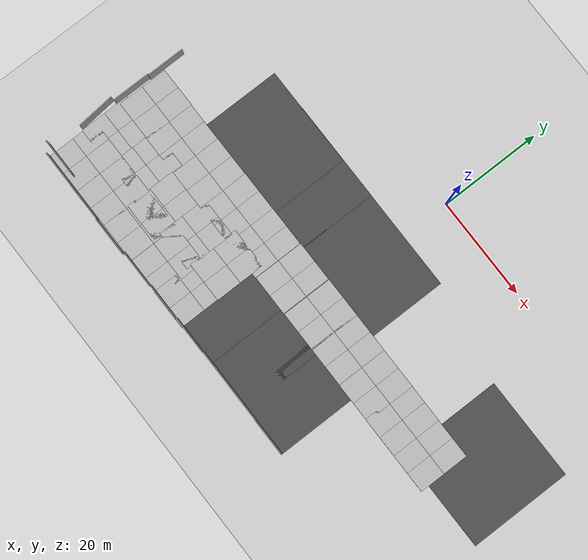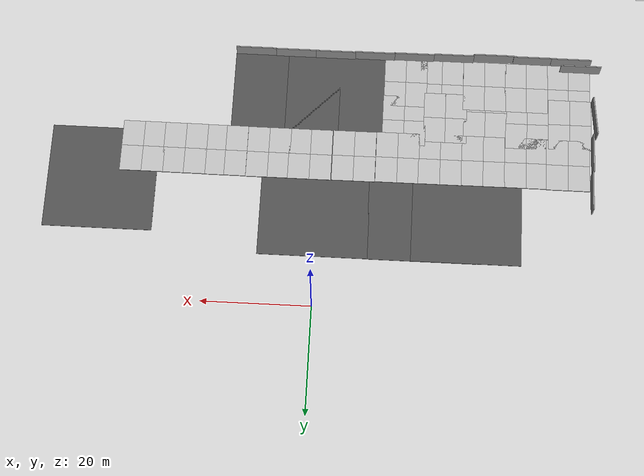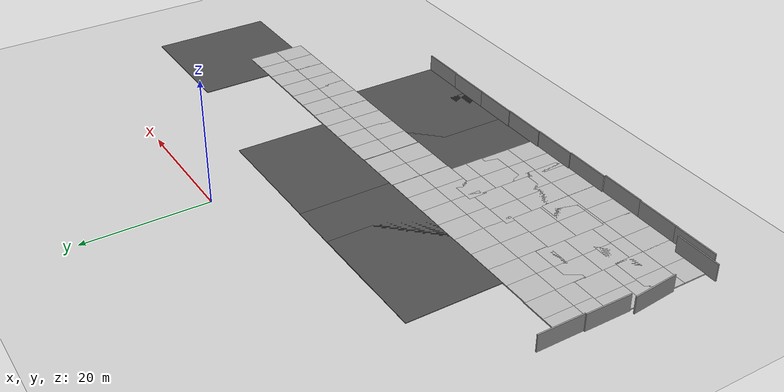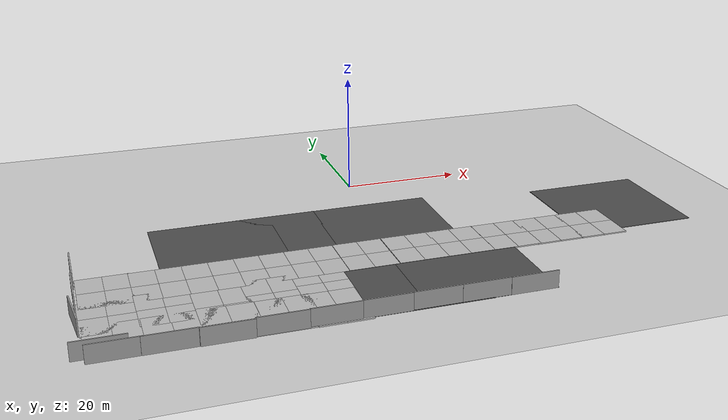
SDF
<sdf version="1.6">
 <world name="default">
  <model name="ground_plane">
   <static>1</static>
   <link name="link">
    <collision name="collision">
     <geometry><plane><normal>0 0 1</normal><size>100 100</size></plane></geometry>
     <surface><friction><ode><mu>100</mu><mu2>50</mu2></ode></friction></surface>
    </collision>
    <visual name="visual">
     <cast_shadows>0</cast_shadows>
     <geometry><plane><normal>0 0 1</normal><size>100 100</size></plane></geometry>
     <material>
      <script><uri>file://media/materials/scripts/gazebo.material</uri><name>Gazebo/Grey</name></script>
     </material>
    </visual>
   </link>
  </model>
  <model name="asphalt_plane">
   <static>1</static>
   <link name="link">
    <collision name="collision"><geometry><box><size>20 20 0.1</size></box></geometry></collision>
    <visual name="visual">
     <cast_shadows>0</cast_shadows>
     <geometry><box><size>20 20 0.1</size></box></geometry>
     <material>
      <script>
       <uri>model://asphalt_plane/materials/scripts</uri>
       <uri>model://asphalt_plane/materials/textures</uri>
       <name>vrc/asphalt</name>
      </script>
     </material>
    </visual>
   </link>
   <pose>0.46329 -19.4958 0 0 -0 0</pose>
  </model>
  <model name="asphalt_plane_0">
   <static>1</static>
   <link name="link">
    <collision name="collision"><geometry><box><size>20 20 0.1</size></box></geometry></collision>
    <visual name="visual">
     <cast_shadows>0</cast_shadows>
     <geometry><box><size>20 20 0.1</size></box></geometry>
     <material>
      <script>
       <uri>model://asphalt_plane/materials/scripts</uri>
       <uri>model://asphalt_plane/materials/textures</uri>
       <name>vrc/asphalt</name>
      </script>
     </material>
    </visual>
   </link>
   <pose>-19.3509 -19.4595 0 0 -0 0</pose>
  </model>
  <model name="asphalt_plane_2">
   <static>1</static>
   <link name="link">
    <collision name="collision"><geometry><box><size>20 20 0.1</size></box></geometry></collision>
    <visual name="visual">
     <cast_shadows>0</cast_shadows>
     <geometry><box><size>20 20 0.1</size></box></geometry>
     <material>
      <script>
       <uri>model://asphalt_plane/materials/scripts</uri>
       <uri>model://asphalt_plane/materials/textures</uri>
       <name>vrc/asphalt</name>
      </script>
     </material>
    </visual>
   </link>
   <pose>-27.35 -19.5085 0 0 -0 0</pose>
  </model>
  <model name="mud_box_2_clone">
   <static>1</static>
   <link name="link">
    <collision name="collision"><geometry><box><size>8 10 0.2</size></box></geometry></collision>
    <visual name="visual_1">
     <pose>-2 2.5 0 0 -0 0</pose>
     <cast_shadows>0</cast_shadows>
     <geometry><box><size>4 5 0.2</size></box></geometry>
     <material>
      <script>
       <uri>model://mud_box/materials/scripts</uri>
       <uri>model://mud_box/materials/textures</uri>
       <name>vrc/mud</name>
      </script>
     </material>
    </visual>
    <visual name="visual_2">
     <pose>2 2.5 0 0 -0 0</pose>
     <cast_shadows>0</cast_shadows>
     <geometry><box><size>4 5 0.2</size></box></geometry>
     <material>
      <script>
       <uri>model://mud_box/materials/scripts</uri>
       <uri>model://mud_box/materials/textures</uri>
       <name>vrc/mud</name>
      </script>
     </material>
    </visual>
    <visual name="visual_3">
     <pose>2 -2.5 0 0 -0 0</pose>
     <cast_shadows>0</cast_shadows>
     <geometry><box><size>4 5 0.2</size></box></geometry>
     <material>
      <script>
       <uri>model://mud_box/materials/scripts</uri>
       <uri>model://mud_box/materials/textures</uri>
       <name>vrc/mud</name>
      </script>
     </material>
    </visual>
    <visual name="visual_4">
     <pose>-2 -2.5 0 0 -0 0</pose>
     <cast_shadows>0</cast_shadows>
     <geometry><box><size>4 5 0.2</size></box></geometry>
     <material>
      <script>
       <uri>model://mud_box/materials/scripts</uri>
       <uri>model://mud_box/materials/textures</uri>
       <name>vrc/mud</name>
      </script>
     </material>
    </visual>
   </link>
   <pose>-6.29821 -29.5881 0 0 -0 0</pose>
  </model>
  <model name="mud_box_2_clone_0">
   <static>1</static>
   <link name="link">
    <collision name="collision"><geometry><box><size>8 10 0.2</size></box></geometry></collision>
    <visual name="visual_1">
     <pose>-2 2.5 0 0 -0 0</pose>
     <cast_shadows>0</cast_shadows>
     <geometry><box><size>4 5 0.2</size></box></geometry>
     <material>
      <script>
       <uri>model://mud_box/materials/scripts</uri>
       <uri>model://mud_box/materials/textures</uri>
       <name>vrc/mud</name>
      </script>
     </material>
    </visual>
    <visual name="visual_2">
     <pose>2 2.5 0 0 -0 0</pose>
     <cast_shadows>0</cast_shadows>
     <geometry><box><size>4 5 0.2</size></box></geometry>
     <material>
      <script>
       <uri>model://mud_box/materials/scripts</uri>
       <uri>model://mud_box/materials/textures</uri>
       <name>vrc/mud</name>
      </script>
     </material>
    </visual>
    <visual name="visual_3">
     <pose>2 -2.5 0 0 -0 0</pose>
     <cast_shadows>0</cast_shadows>
     <geometry><box><size>4 5 0.2</size></box></geometry>
     <material>
      <script>
       <uri>model://mud_box/materials/scripts</uri>
       <uri>model://mud_box/materials/textures</uri>
       <name>vrc/mud</name>
      </script>
     </material>
    </visual>
    <visual name="visual_4">
     <pose>-2 -2.5 0 0 -0 0</pose>
     <cast_shadows>0</cast_shadows>
     <geometry><box><size>4 5 0.2</size></box></geometry>
     <material>
      <script>
       <uri>model://mud_box/materials/scripts</uri>
       <uri>model://mud_box/materials/textures</uri>
       <name>vrc/mud</name>
      </script>
     </material>
    </visual>
   </link>
   <pose>1.80119 -29.5516 0 0 -0 0</pose>
  </model>
  <model name="mud_box_2_clone_1">
   <static>1</static>
   <link name="link">
    <collision name="collision"><geometry><box><size>8 10 0.2</size></box></geometry></collision>
    <visual name="visual_1">
     <pose>-2 2.5 0 0 -0 0</pose>
     <cast_shadows>0</cast_shadows>
     <geometry><box><size>4 5 0.2</size></box></geometry>
     <material>
      <script>
       <uri>model://mud_box/materials/scripts</uri>
       <uri>model://mud_box/materials/textures</uri>
       <name>vrc/mud</name>
      </script>
     </material>
    </visual>
    <visual name="visual_2">
     <pose>2 2.5 0 0 -0 0</pose>
     <cast_shadows>0</cast_shadows>
     <geometry><box><size>4 5 0.2</size></box></geometry>
     <material>
      <script>
       <uri>model://mud_box/materials/scripts</uri>
       <uri>model://mud_box/materials/textures</uri>
       <name>vrc/mud</name>
      </script>
     </material>
    </visual>
    <visual name="visual_3">
     <pose>2 -2.5 0 0 -0 0</pose>
     <cast_shadows>0</cast_shadows>
     <geometry><box><size>4 5 0.2</size></box></geometry>
     <material>
      <script>
       <uri>model://mud_box/materials/scripts</uri>
       <uri>model://mud_box/materials/textures</uri>
       <name>vrc/mud</name>
      </script>
     </material>
    </visual>
    <visual name="visual_4">
     <pose>-2 -2.5 0 0 -0 0</pose>
     <cast_shadows>0</cast_shadows>
     <geometry><box><size>4 5 0.2</size></box></geometry>
     <material>
      <script>
       <uri>model://mud_box/materials/scripts</uri>
       <uri>model://mud_box/materials/textures</uri>
       <name>vrc/mud</name>
      </script>
     </material>
    </visual>
   </link>
   <pose>9.52834 -29.56 0 0 -0 0</pose>
  </model>
  <model name="mud_box_2_clone_2">
   <static>1</static>
   <link name="link">
    <collision name="collision"><geometry><box><size>8 10 0.2</size></box></geometry></collision>
    <visual name="visual_1">
     <pose>-2 2.5 0 0 -0 0</pose>
     <cast_shadows>0</cast_shadows>
     <geometry><box><size>4 5 0.2</size></box></geometry>
     <material>
      <script>
       <uri>model://mud_box/materials/scripts</uri>
       <uri>model://mud_box/materials/textures</uri>
       <name>vrc/mud</name>
      </script>
     </material>
    </visual>
    <visual name="visual_2">
     <pose>2 2.5 0 0 -0 0</pose>
     <cast_shadows>0</cast_shadows>
     <geometry><box><size>4 5 0.2</size></box></geometry>
     <material>
      <script>
       <uri>model://mud_box/materials/scripts</uri>
       <uri>model://mud_box/materials/textures</uri>
       <name>vrc/mud</name>
      </script>
     </material>
    </visual>
    <visual name="visual_3">
     <pose>2 -2.5 0 0 -0 0</pose>
     <cast_shadows>0</cast_shadows>
     <geometry><box><size>4 5 0.2</size></box></geometry>
     <material>
      <script>
       <uri>model://mud_box/materials/scripts</uri>
       <uri>model://mud_box/materials/textures</uri>
       <name>vrc/mud</name>
      </script>
     </material>
    </visual>
    <visual name="visual_4">
     <pose>-2 -2.5 0 0 -0 0</pose>
     <cast_shadows>0</cast_shadows>
     <geometry><box><size>4 5 0.2</size></box></geometry>
     <material>
      <script>
       <uri>model://mud_box/materials/scripts</uri>
       <uri>model://mud_box/materials/textures</uri>
       <name>vrc/mud</name>
      </script>
     </material>
    </visual>
   </link>
   <pose>17.5411 -29.599 0 0 -0 0</pose>
  </model>
  <model name="mud_box_2_clone_3">
   <static>1</static>
   <link name="link">
    <collision name="collision"><geometry><box><size>8 10 0.2</size></box></geometry></collision>
    <visual name="visual_1">
     <pose>-2 2.5 0 0 -0 0</pose>
     <cast_shadows>0</cast_shadows>
     <geometry><box><size>4 5 0.2</size></box></geometry>
     <material>
      <script>
       <uri>model://mud_box/materials/scripts</uri>
       <uri>model://mud_box/materials/textures</uri>
       <name>vrc/mud</name>
      </script>
     </material>
    </visual>
    <visual name="visual_2">
     <pose>2 2.5 0 0 -0 0</pose>
     <cast_shadows>0</cast_shadows>
     <geometry><box><size>4 5 0.2</size></box></geometry>
     <material>
      <script>
       <uri>model://mud_box/materials/scripts</uri>
       <uri>model://mud_box/materials/textures</uri>
       <name>vrc/mud</name>
      </script>
     </material>
    </visual>
    <visual name="visual_3">
     <pose>2 -2.5 0 0 -0 0</pose>
     <cast_shadows>0</cast_shadows>
     <geometry><box><size>4 5 0.2</size></box></geometry>
     <material>
      <script>
       <uri>model://mud_box/materials/scripts</uri>
       <uri>model://mud_box/materials/textures</uri>
       <name>vrc/mud</name>
      </script>
     </material>
    </visual>
    <visual name="visual_4">
     <pose>-2 -2.5 0 0 -0 0</pose>
     <cast_shadows>0</cast_shadows>
     <geometry><box><size>4 5 0.2</size></box></geometry>
     <material>
      <script>
       <uri>model://mud_box/materials/scripts</uri>
       <uri>model://mud_box/materials/textures</uri>
       <name>vrc/mud</name>
      </script>
     </material>
    </visual>
   </link>
   <pose>25.0381 -29.645 0 0 -0 0</pose>
  </model>
  <model name="mud_box_2_clone_4">
   <static>1</static>
   <link name="link">
    <collision name="collision"><geometry><box><size>8 10 0.2</size></box></geometry></collision>
    <visual name="visual_1">
     <pose>-2 2.5 0 0 -0 0</pose>
     <cast_shadows>0</cast_shadows>
     <geometry><box><size>4 5 0.2</size></box></geometry>
     <material>
      <script>
       <uri>model://mud_box/materials/scripts</uri>
       <uri>model://mud_box/materials/textures</uri>
       <name>vrc/mud</name>
      </script>
     </material>
    </visual>
    <visual name="visual_2">
     <pose>2 2.5 0 0 -0 0</pose>
     <cast_shadows>0</cast_shadows>
     <geometry><box><size>4 5 0.2</size></box></geometry>
     <material>
      <script>
       <uri>model://mud_box/materials/scripts</uri>
       <uri>model://mud_box/materials/textures</uri>
       <name>vrc/mud</name>
      </script>
     </material>
    </visual>
    <visual name="visual_3">
     <pose>2 -2.5 0 0 -0 0</pose>
     <cast_shadows>0</cast_shadows>
     <geometry><box><size>4 5 0.2</size></box></geometry>
     <material>
      <script>
       <uri>model://mud_box/materials/scripts</uri>
       <uri>model://mud_box/materials/textures</uri>
       <name>vrc/mud</name>
      </script>
     </material>
    </visual>
    <visual name="visual_4">
     <pose>-2 -2.5 0 0 -0 0</pose>
     <cast_shadows>0</cast_shadows>
     <geometry><box><size>4 5 0.2</size></box></geometry>
     <material>
      <script>
       <uri>model://mud_box/materials/scripts</uri>
       <uri>model://mud_box/materials/textures</uri>
       <name>vrc/mud</name>
      </script>
     </material>
    </visual>
   </link>
   <pose>-14.3475 -29.6616 0 0 -0 0</pose>
  </model>
  <model name="mud_box_2_clone_5">
   <static>1</static>
   <link name="link">
    <collision name="collision"><geometry><box><size>8 10 0.2</size></box></geometry></collision>
    <visual name="visual_1">
     <pose>-2 2.5 0 0 -0 0</pose>
     <cast_shadows>0</cast_shadows>
     <geometry><box><size>4 5 0.2</size></box></geometry>
     <material>
      <script>
       <uri>model://mud_box/materials/scripts</uri>
       <uri>model://mud_box/materials/textures</uri>
       <name>vrc/mud</name>
      </script>
     </material>
    </visual>
    <visual name="visual_2">
     <pose>2 2.5 0 0 -0 0</pose>
     <cast_shadows>0</cast_shadows>
     <geometry><box><size>4 5 0.2</size></box></geometry>
     <material>
      <script>
       <uri>model://mud_box/materials/scripts</uri>
       <uri>model://mud_box/materials/textures</uri>
       <name>vrc/mud</name>
      </script>
     </material>
    </visual>
    <visual name="visual_3">
     <pose>2 -2.5 0 0 -0 0</pose>
     <cast_shadows>0</cast_shadows>
     <geometry><box><size>4 5 0.2</size></box></geometry>
     <material>
      <script>
       <uri>model://mud_box/materials/scripts</uri>
       <uri>model://mud_box/materials/textures</uri>
       <name>vrc/mud</name>
      </script>
     </material>
    </visual>
    <visual name="visual_4">
     <pose>-2 -2.5 0 0 -0 0</pose>
     <cast_shadows>0</cast_shadows>
     <geometry><box><size>4 5 0.2</size></box></geometry>
     <material>
      <script>
       <uri>model://mud_box/materials/scripts</uri>
       <uri>model://mud_box/materials/textures</uri>
       <name>vrc/mud</name>
      </script>
     </material>
    </visual>
   </link>
   <pose>-22.2418 -29.6822 0 0 -0 0</pose>
  </model>
  <model name="mud_box_2_clone_6">
   <static>1</static>
   <link name="link">
    <collision name="collision"><geometry><box><size>8 10 0.2</size></box></geometry></collision>
    <visual name="visual_1">
     <pose>-2 2.5 0 0 -0 0</pose>
     <cast_shadows>0</cast_shadows>
     <geometry><box><size>4 5 0.2</size></box></geometry>
     <material>
      <script>
       <uri>model://mud_box/materials/scripts</uri>
       <uri>model://mud_box/materials/textures</uri>
       <name>vrc/mud</name>
      </script>
     </material>
    </visual>
    <visual name="visual_2">
     <pose>2 2.5 0 0 -0 0</pose>
     <cast_shadows>0</cast_shadows>
     <geometry><box><size>4 5 0.2</size></box></geometry>
     <material>
      <script>
       <uri>model://mud_box/materials/scripts</uri>
       <uri>model://mud_box/materials/textures</uri>
       <name>vrc/mud</name>
      </script>
     </material>
    </visual>
    <visual name="visual_3">
     <pose>2 -2.5 0 0 -0 0</pose>
     <cast_shadows>0</cast_shadows>
     <geometry><box><size>4 5 0.2</size></box></geometry>
     <material>
      <script>
       <uri>model://mud_box/materials/scripts</uri>
       <uri>model://mud_box/materials/textures</uri>
       <name>vrc/mud</name>
      </script>
     </material>
    </visual>
    <visual name="visual_4">
     <pose>-2 -2.5 0 0 -0 0</pose>
     <cast_shadows>0</cast_shadows>
     <geometry><box><size>4 5 0.2</size></box></geometry>
     <material>
      <script>
       <uri>model://mud_box/materials/scripts</uri>
       <uri>model://mud_box/materials/textures</uri>
       <name>vrc/mud</name>
      </script>
     </material>
    </visual>
   </link>
   <pose>-30.175 -29.7222 0 0 -0 0</pose>
  </model>
  <model name="mud_box_2_clone_7">
   <static>1</static>
   <link name="link">
    <collision name="collision"><geometry><box><size>8 10 0.2</size></box></geometry></collision>
    <visual name="visual_1">
     <pose>-2 2.5 0 0 -0 0</pose>
     <cast_shadows>0</cast_shadows>
     <geometry><box><size>4 5 0.2</size></box></geometry>
     <material>
      <script>
       <uri>model://mud_box/materials/scripts</uri>
       <uri>model://mud_box/materials/textures</uri>
       <name>vrc/mud</name>
      </script>
     </material>
    </visual>
    <visual name="visual_2">
     <pose>2 2.5 0 0 -0 0</pose>
     <cast_shadows>0</cast_shadows>
     <geometry><box><size>4 5 0.2</size></box></geometry>
     <material>
      <script>
       <uri>model://mud_box/materials/scripts</uri>
       <uri>model://mud_box/materials/textures</uri>
       <name>vrc/mud</name>
      </script>
     </material>
    </visual>
    <visual name="visual_3">
     <pose>2 -2.5 0 0 -0 0</pose>
     <cast_shadows>0</cast_shadows>
     <geometry><box><size>4 5 0.2</size></box></geometry>
     <material>
      <script>
       <uri>model://mud_box/materials/scripts</uri>
       <uri>model://mud_box/materials/textures</uri>
       <name>vrc/mud</name>
      </script>
     </material>
    </visual>
    <visual name="visual_4">
     <pose>-2 -2.5 0 0 -0 0</pose>
     <cast_shadows>0</cast_shadows>
     <geometry><box><size>4 5 0.2</size></box></geometry>
     <material>
      <script>
       <uri>model://mud_box/materials/scripts</uri>
       <uri>model://mud_box/materials/textures</uri>
       <name>vrc/mud</name>
      </script>
     </material>
    </visual>
   </link>
   <pose>-38.1218 -29.7385 0 0 -0 0</pose>
  </model>
  <model name="mud_box_2_clone_8">
   <static>1</static>
   <link name="link">
    <collision name="collision"><geometry><box><size>8 10 0.2</size></box></geometry></collision>
    <visual name="visual_1">
     <pose>-2 2.5 0 0 -0 0</pose>
     <cast_shadows>0</cast_shadows>
     <geometry><box><size>4 5 0.2</size></box></geometry>
     <material>
      <script>
       <uri>model://mud_box/materials/scripts</uri>
       <uri>model://mud_box/materials/textures</uri>
       <name>vrc/mud</name>
      </script>
     </material>
    </visual>
    <visual name="visual_2">
     <pose>2 2.5 0 0 -0 0</pose>
     <cast_shadows>0</cast_shadows>
     <geometry><box><size>4 5 0.2</size></box></geometry>
     <material>
      <script>
       <uri>model://mud_box/materials/scripts</uri>
       <uri>model://mud_box/materials/textures</uri>
       <name>vrc/mud</name>
      </script>
     </material>
    </visual>
    <visual name="visual_3">
     <pose>2 -2.5 0 0 -0 0</pose>
     <cast_shadows>0</cast_shadows>
     <geometry><box><size>4 5 0.2</size></box></geometry>
     <material>
      <script>
       <uri>model://mud_box/materials/scripts</uri>
       <uri>model://mud_box/materials/textures</uri>
       <name>vrc/mud</name>
      </script>
     </material>
    </visual>
    <visual name="visual_4">
     <pose>-2 -2.5 0 0 -0 0</pose>
     <cast_shadows>0</cast_shadows>
     <geometry><box><size>4 5 0.2</size></box></geometry>
     <material>
      <script>
       <uri>model://mud_box/materials/scripts</uri>
       <uri>model://mud_box/materials/textures</uri>
       <name>vrc/mud</name>
      </script>
     </material>
    </visual>
   </link>
   <pose>32.8401 -29.6668 0 0 -0 0</pose>
  </model>
  <model name="mud_box_5_clone_1_clone_4_clone">
   <static>1</static>
   <link name="link">
    <collision name="collision"><geometry><box><size>8 10 0.2</size></box></geometry></collision>
    <visual name="visual_1">
     <pose>-2 2.5 0 0 -0 0</pose>
     <cast_shadows>0</cast_shadows>
     <geometry><box><size>4 5 0.2</size></box></geometry>
     <material>
      <script>
       <uri>model://mud_box/materials/scripts</uri>
       <uri>model://mud_box/materials/textures</uri>
       <name>vrc/mud</name>
      </script>
     </material>
    </visual>
    <visual name="visual_2">
     <pose>2 2.5 0 0 -0 0</pose>
     <cast_shadows>0</cast_shadows>
     <geometry><box><size>4 5 0.2</size></box></geometry>
     <material>
      <script>
       <uri>model://mud_box/materials/scripts</uri>
       <uri>model://mud_box/materials/textures</uri>
       <name>vrc/mud</name>
      </script>
     </material>
    </visual>
    <visual name="visual_3">
     <pose>2 -2.5 0 0 -0 0</pose>
     <cast_shadows>0</cast_shadows>
     <geometry><box><size>4 5 0.2</size></box></geometry>
     <material>
      <script>
       <uri>model://mud_box/materials/scripts</uri>
       <uri>model://mud_box/materials/textures</uri>
       <name>vrc/mud</name>
      </script>
     </material>
    </visual>
    <visual name="visual_4">
     <pose>-2 -2.5 0 0 -0 0</pose>
     <cast_shadows>0</cast_shadows>
     <geometry><box><size>4 5 0.2</size></box></geometry>
     <material>
      <script>
       <uri>model://mud_box/materials/scripts</uri>
       <uri>model://mud_box/materials/textures</uri>
       <name>vrc/mud</name>
      </script>
     </material>
    </visual>
   </link>
   <pose>-45.8606 -29.6589 0 0 -0 0</pose>
  </model>
  <model name="mud_box_5_clone_1_clone_4_clone_clone">
   <static>1</static>
   <link name="link">
    <collision name="collision"><geometry><box><size>8 10 0.2</size></box></geometry></collision>
    <visual name="visual_1">
     <pose>-2 2.5 0 0 -0 0</pose>
     <cast_shadows>0</cast_shadows>
     <geometry><box><size>4 5 0.2</size></box></geometry>
     <material>
      <script>
       <uri>model://mud_box/materials/scripts</uri>
       <uri>model://mud_box/materials/textures</uri>
       <name>vrc/mud</name>
      </script>
     </material>
    </visual>
    <visual name="visual_2">
     <pose>2 2.5 0 0 -0 0</pose>
     <cast_shadows>0</cast_shadows>
     <geometry><box><size>4 5 0.2</size></box></geometry>
     <material>
      <script>
       <uri>model://mud_box/materials/scripts</uri>
       <uri>model://mud_box/materials/textures</uri>
       <name>vrc/mud</name>
      </script>
     </material>
    </visual>
    <visual name="visual_3">
     <pose>2 -2.5 0 0 -0 0</pose>
     <cast_shadows>0</cast_shadows>
     <geometry><box><size>4 5 0.2</size></box></geometry>
     <material>
      <script>
       <uri>model://mud_box/materials/scripts</uri>
       <uri>model://mud_box/materials/textures</uri>
       <name>vrc/mud</name>
      </script>
     </material>
    </visual>
    <visual name="visual_4">
     <pose>-2 -2.5 0 0 -0 0</pose>
     <cast_shadows>0</cast_shadows>
     <geometry><box><size>4 5 0.2</size></box></geometry>
     <material>
      <script>
       <uri>model://mud_box/materials/scripts</uri>
       <uri>model://mud_box/materials/textures</uri>
       <name>vrc/mud</name>
      </script>
     </material>
    </visual>
   </link>
   <pose>-45.9664 -45.0649 0 0 -0 0</pose>
  </model>
  <model name="mud_box_5_clone_1_clone_4_clone_clone_0">
   <static>1</static>
   <link name="link">
    <collision name="collision"><geometry><box><size>8 10 0.2</size></box></geometry></collision>
    <visual name="visual_1">
     <pose>-2 2.5 0 0 -0 0</pose>
     <cast_shadows>0</cast_shadows>
     <geometry><box><size>4 5 0.2</size></box></geometry>
     <material>
      <script>
       <uri>model://mud_box/materials/scripts</uri>
       <uri>model://mud_box/materials/textures</uri>
       <name>vrc/mud</name>
      </script>
     </material>
    </visual>
    <visual name="visual_2">
     <pose>2 2.5 0 0 -0 0</pose>
     <cast_shadows>0</cast_shadows>
     <geometry><box><size>4 5 0.2</size></box></geometry>
     <material>
      <script>
       <uri>model://mud_box/materials/scripts</uri>
       <uri>model://mud_box/materials/textures</uri>
       <name>vrc/mud</name>
      </script>
     </material>
    </visual>
    <visual name="visual_3">
     <pose>2 -2.5 0 0 -0 0</pose>
     <cast_shadows>0</cast_shadows>
     <geometry><box><size>4 5 0.2</size></box></geometry>
     <material>
      <script>
       <uri>model://mud_box/materials/scripts</uri>
       <uri>model://mud_box/materials/textures</uri>
       <name>vrc/mud</name>
      </script>
     </material>
    </visual>
    <visual name="visual_4">
     <pose>-2 -2.5 0 0 -0 0</pose>
     <cast_shadows>0</cast_shadows>
     <geometry><box><size>4 5 0.2</size></box></geometry>
     <material>
      <script>
       <uri>model://mud_box/materials/scripts</uri>
       <uri>model://mud_box/materials/textures</uri>
       <name>vrc/mud</name>
      </script>
     </material>
    </visual>
   </link>
   <pose>-46.1763 -37.8638 0 0 -0 0</pose>
  </model>
  <model name="mud_box_5_clone_1_clone_4_clone_clone_1">
   <static>1</static>
   <link name="link">
    <collision name="collision"><geometry><box><size>8 10 0.2</size></box></geometry></collision>
    <visual name="visual_1">
     <pose>-2 2.5 0 0 -0 0</pose>
     <cast_shadows>0</cast_shadows>
     <geometry><box><size>4 5 0.2</size></box></geometry>
     <material>
      <script>
       <uri>model://mud_box/materials/scripts</uri>
       <uri>model://mud_box/materials/textures</uri>
       <name>vrc/mud</name>
      </script>
     </material>
    </visual>
    <visual name="visual_2">
     <pose>2 2.5 0 0 -0 0</pose>
     <cast_shadows>0</cast_shadows>
     <geometry><box><size>4 5 0.2</size></box></geometry>
     <material>
      <script>
       <uri>model://mud_box/materials/scripts</uri>
       <uri>model://mud_box/materials/textures</uri>
       <name>vrc/mud</name>
      </script>
     </material>
    </visual>
    <visual name="visual_3">
     <pose>2 -2.5 0 0 -0 0</pose>
     <cast_shadows>0</cast_shadows>
     <geometry><box><size>4 5 0.2</size></box></geometry>
     <material>
      <script>
       <uri>model://mud_box/materials/scripts</uri>
       <uri>model://mud_box/materials/textures</uri>
       <name>vrc/mud</name>
      </script>
     </material>
    </visual>
    <visual name="visual_4">
     <pose>-2 -2.5 0 0 -0 0</pose>
     <cast_shadows>0</cast_shadows>
     <geometry><box><size>4 5 0.2</size></box></geometry>
     <material>
      <script>
       <uri>model://mud_box/materials/scripts</uri>
       <uri>model://mud_box/materials/textures</uri>
       <name>vrc/mud</name>
      </script>
     </material>
    </visual>
   </link>
   <pose>-38.0528 -45.0636 0 0 -0 0</pose>
  </model>
  <model name="mud_box_5_clone_1_clone_4_clone_clone_2">
   <static>1</static>
   <link name="link">
    <collision name="collision"><geometry><box><size>8 10 0.2</size></box></geometry></collision>
    <visual name="visual_1">
     <pose>-2 2.5 0 0 -0 0</pose>
     <cast_shadows>0</cast_shadows>
     <geometry><box><size>4 5 0.2</size></box></geometry>
     <material>
      <script>
       <uri>model://mud_box/materials/scripts</uri>
       <uri>model://mud_box/materials/textures</uri>
       <name>vrc/mud</name>
      </script>
     </material>
    </visual>
    <visual name="visual_2">
     <pose>2 2.5 0 0 -0 0</pose>
     <cast_shadows>0</cast_shadows>
     <geometry><box><size>4 5 0.2</size></box></geometry>
     <material>
      <script>
       <uri>model://mud_box/materials/scripts</uri>
       <uri>model://mud_box/materials/textures</uri>
       <name>vrc/mud</name>
      </script>
     </material>
    </visual>
    <visual name="visual_3">
     <pose>2 -2.5 0 0 -0 0</pose>
     <cast_shadows>0</cast_shadows>
     <geometry><box><size>4 5 0.2</size></box></geometry>
     <material>
      <script>
       <uri>model://mud_box/materials/scripts</uri>
       <uri>model://mud_box/materials/textures</uri>
       <name>vrc/mud</name>
      </script>
     </material>
    </visual>
    <visual name="visual_4">
     <pose>-2 -2.5 0 0 -0 0</pose>
     <cast_shadows>0</cast_shadows>
     <geometry><box><size>4 5 0.2</size></box></geometry>
     <material>
      <script>
       <uri>model://mud_box/materials/scripts</uri>
       <uri>model://mud_box/materials/textures</uri>
       <name>vrc/mud</name>
      </script>
     </material>
    </visual>
   </link>
   <pose>-38.2366 -37.6293 0 0 -0 0</pose>
  </model>
  <model name="mud_box_5_clone_1_clone_4_clone_clone_3">
   <static>1</static>
   <link name="link">
    <collision name="collision"><geometry><box><size>8 10 0.2</size></box></geometry></collision>
    <visual name="visual_1">
     <pose>-2 2.5 0 0 -0 0</pose>
     <cast_shadows>0</cast_shadows>
     <geometry><box><size>4 5 0.2</size></box></geometry>
     <material>
      <script>
       <uri>model://mud_box/materials/scripts</uri>
       <uri>model://mud_box/materials/textures</uri>
       <name>vrc/mud</name>
      </script>
     </material>
    </visual>
    <visual name="visual_2">
     <pose>2 2.5 0 0 -0 0</pose>
     <cast_shadows>0</cast_shadows>
     <geometry><box><size>4 5 0.2</size></box></geometry>
     <material>
      <script>
       <uri>model://mud_box/materials/scripts</uri>
       <uri>model://mud_box/materials/textures</uri>
       <name>vrc/mud</name>
      </script>
     </material>
    </visual>
    <visual name="visual_3">
     <pose>2 -2.5 0 0 -0 0</pose>
     <cast_shadows>0</cast_shadows>
     <geometry><box><size>4 5 0.2</size></box></geometry>
     <material>
      <script>
       <uri>model://mud_box/materials/scripts</uri>
       <uri>model://mud_box/materials/textures</uri>
       <name>vrc/mud</name>
      </script>
     </material>
    </visual>
    <visual name="visual_4">
     <pose>-2 -2.5 0 0 -0 0</pose>
     <cast_shadows>0</cast_shadows>
     <geometry><box><size>4 5 0.2</size></box></geometry>
     <material>
      <script>
       <uri>model://mud_box/materials/scripts</uri>
       <uri>model://mud_box/materials/textures</uri>
       <name>vrc/mud</name>
      </script>
     </material>
    </visual>
   </link>
   <pose>-30.3951 -39.6922 0 0 -0 0</pose>
  </model>
  <model name="mud_box_5_clone_1_clone_4_clone_clone_4">
   <static>1</static>
   <link name="link">
    <collision name="collision"><geometry><box><size>8 10 0.2</size></box></geometry></collision>
    <visual name="visual_1">
     <pose>-2 2.5 0 0 -0 0</pose>
     <cast_shadows>0</cast_shadows>
     <geometry><box><size>4 5 0.2</size></box></geometry>
     <material>
      <script>
       <uri>model://mud_box/materials/scripts</uri>
       <uri>model://mud_box/materials/textures</uri>
       <name>vrc/mud</name>
      </script>
     </material>
    </visual>
    <visual name="visual_2">
     <pose>2 2.5 0 0 -0 0</pose>
     <cast_shadows>0</cast_shadows>
     <geometry><box><size>4 5 0.2</size></box></geometry>
     <material>
      <script>
       <uri>model://mud_box/materials/scripts</uri>
       <uri>model://mud_box/materials/textures</uri>
       <name>vrc/mud</name>
      </script>
     </material>
    </visual>
    <visual name="visual_3">
     <pose>2 -2.5 0 0 -0 0</pose>
     <cast_shadows>0</cast_shadows>
     <geometry><box><size>4 5 0.2</size></box></geometry>
     <material>
      <script>
       <uri>model://mud_box/materials/scripts</uri>
       <uri>model://mud_box/materials/textures</uri>
       <name>vrc/mud</name>
      </script>
     </material>
    </visual>
    <visual name="visual_4">
     <pose>-2 -2.5 0 0 -0 0</pose>
     <cast_shadows>0</cast_shadows>
     <geometry><box><size>4 5 0.2</size></box></geometry>
     <material>
      <script>
       <uri>model://mud_box/materials/scripts</uri>
       <uri>model://mud_box/materials/textures</uri>
       <name>vrc/mud</name>
      </script>
     </material>
    </visual>
   </link>
   <pose>-30.2135 -45.0793 0 0 -0 0</pose>
  </model>
  <model name="mud_box_5_clone_1_clone_4_clone_clone_5">
   <static>1</static>
   <link name="link">
    <collision name="collision"><geometry><box><size>8 10 0.2</size></box></geometry></collision>
    <visual name="visual_1">
     <pose>-2 2.5 0 0 -0 0</pose>
     <cast_shadows>0</cast_shadows>
     <geometry><box><size>4 5 0.2</size></box></geometry>
     <material>
      <script>
       <uri>model://mud_box/materials/scripts</uri>
       <uri>model://mud_box/materials/textures</uri>
       <name>vrc/mud</name>
      </script>
     </material>
    </visual>
    <visual name="visual_2">
     <pose>2 2.5 0 0 -0 0</pose>
     <cast_shadows>0</cast_shadows>
     <geometry><box><size>4 5 0.2</size></box></geometry>
     <material>
      <script>
       <uri>model://mud_box/materials/scripts</uri>
       <uri>model://mud_box/materials/textures</uri>
       <name>vrc/mud</name>
      </script>
     </material>
    </visual>
    <visual name="visual_3">
     <pose>2 -2.5 0 0 -0 0</pose>
     <cast_shadows>0</cast_shadows>
     <geometry><box><size>4 5 0.2</size></box></geometry>
     <material>
      <script>
       <uri>model://mud_box/materials/scripts</uri>
       <uri>model://mud_box/materials/textures</uri>
       <name>vrc/mud</name>
      </script>
     </material>
    </visual>
    <visual name="visual_4">
     <pose>-2 -2.5 0 0 -0 0</pose>
     <cast_shadows>0</cast_shadows>
     <geometry><box><size>4 5 0.2</size></box></geometry>
     <material>
      <script>
       <uri>model://mud_box/materials/scripts</uri>
       <uri>model://mud_box/materials/textures</uri>
       <name>vrc/mud</name>
      </script>
     </material>
    </visual>
   </link>
   <pose>-22.1912 -45.095 0 0 -0 0</pose>
  </model>
  <model name="mud_box_5_clone_1_clone_4_clone_clone_6">
   <static>1</static>
   <link name="link">
    <collision name="collision"><geometry><box><size>8 10 0.2</size></box></geometry></collision>
    <visual name="visual_1">
     <pose>-2 2.5 0 0 -0 0</pose>
     <cast_shadows>0</cast_shadows>
     <geometry><box><size>4 5 0.2</size></box></geometry>
     <material>
      <script>
       <uri>model://mud_box/materials/scripts</uri>
       <uri>model://mud_box/materials/textures</uri>
       <name>vrc/mud</name>
      </script>
     </material>
    </visual>
    <visual name="visual_2">
     <pose>2 2.5 0 0 -0 0</pose>
     <cast_shadows>0</cast_shadows>
     <geometry><box><size>4 5 0.2</size></box></geometry>
     <material>
      <script>
       <uri>model://mud_box/materials/scripts</uri>
       <uri>model://mud_box/materials/textures</uri>
       <name>vrc/mud</name>
      </script>
     </material>
    </visual>
    <visual name="visual_3">
     <pose>2 -2.5 0 0 -0 0</pose>
     <cast_shadows>0</cast_shadows>
     <geometry><box><size>4 5 0.2</size></box></geometry>
     <material>
      <script>
       <uri>model://mud_box/materials/scripts</uri>
       <uri>model://mud_box/materials/textures</uri>
       <name>vrc/mud</name>
      </script>
     </material>
    </visual>
    <visual name="visual_4">
     <pose>-2 -2.5 0 0 -0 0</pose>
     <cast_shadows>0</cast_shadows>
     <geometry><box><size>4 5 0.2</size></box></geometry>
     <material>
      <script>
       <uri>model://mud_box/materials/scripts</uri>
       <uri>model://mud_box/materials/textures</uri>
       <name>vrc/mud</name>
      </script>
     </material>
    </visual>
   </link>
   <pose>-22.986 -38.1709 0 0 -0 0</pose>
  </model>
  <model name="mud_box_5_clone_1_clone_4_clone_clone_7">
   <static>1</static>
   <link name="link">
    <collision name="collision"><geometry><box><size>8 10 0.2</size></box></geometry></collision>
    <visual name="visual_1">
     <pose>-2 2.5 0 0 -0 0</pose>
     <cast_shadows>0</cast_shadows>
     <geometry><box><size>4 5 0.2</size></box></geometry>
     <material>
      <script>
       <uri>model://mud_box/materials/scripts</uri>
       <uri>model://mud_box/materials/textures</uri>
       <name>vrc/mud</name>
      </script>
     </material>
    </visual>
    <visual name="visual_2">
     <pose>2 2.5 0 0 -0 0</pose>
     <cast_shadows>0</cast_shadows>
     <geometry><box><size>4 5 0.2</size></box></geometry>
     <material>
      <script>
       <uri>model://mud_box/materials/scripts</uri>
       <uri>model://mud_box/materials/textures</uri>
       <name>vrc/mud</name>
      </script>
     </material>
    </visual>
    <visual name="visual_3">
     <pose>2 -2.5 0 0 -0 0</pose>
     <cast_shadows>0</cast_shadows>
     <geometry><box><size>4 5 0.2</size></box></geometry>
     <material>
      <script>
       <uri>model://mud_box/materials/scripts</uri>
       <uri>model://mud_box/materials/textures</uri>
       <name>vrc/mud</name>
      </script>
     </material>
    </visual>
    <visual name="visual_4">
     <pose>-2 -2.5 0 0 -0 0</pose>
     <cast_shadows>0</cast_shadows>
     <geometry><box><size>4 5 0.2</size></box></geometry>
     <material>
      <script>
       <uri>model://mud_box/materials/scripts</uri>
       <uri>model://mud_box/materials/textures</uri>
       <name>vrc/mud</name>
      </script>
     </material>
    </visual>
   </link>
   <pose>-15.3052 -37.2801 0 0 -0 0</pose>
  </model>
  <model name="mud_box_5_clone_1_clone_4_clone_clone_8">
   <static>1</static>
   <link name="link">
    <collision name="collision"><geometry><box><size>8 10 0.2</size></box></geometry></collision>
    <visual name="visual_1">
     <pose>-2 2.5 0 0 -0 0</pose>
     <cast_shadows>0</cast_shadows>
     <geometry><box><size>4 5 0.2</size></box></geometry>
     <material>
      <script>
       <uri>model://mud_box/materials/scripts</uri>
       <uri>model://mud_box/materials/textures</uri>
       <name>vrc/mud</name>
      </script>
     </material>
    </visual>
    <visual name="visual_2">
     <pose>2 2.5 0 0 -0 0</pose>
     <cast_shadows>0</cast_shadows>
     <geometry><box><size>4 5 0.2</size></box></geometry>
     <material>
      <script>
       <uri>model://mud_box/materials/scripts</uri>
       <uri>model://mud_box/materials/textures</uri>
       <name>vrc/mud</name>
      </script>
     </material>
    </visual>
    <visual name="visual_3">
     <pose>2 -2.5 0 0 -0 0</pose>
     <cast_shadows>0</cast_shadows>
     <geometry><box><size>4 5 0.2</size></box></geometry>
     <material>
      <script>
       <uri>model://mud_box/materials/scripts</uri>
       <uri>model://mud_box/materials/textures</uri>
       <name>vrc/mud</name>
      </script>
     </material>
    </visual>
    <visual name="visual_4">
     <pose>-2 -2.5 0 0 -0 0</pose>
     <cast_shadows>0</cast_shadows>
     <geometry><box><size>4 5 0.2</size></box></geometry>
     <material>
      <script>
       <uri>model://mud_box/materials/scripts</uri>
       <uri>model://mud_box/materials/textures</uri>
       <name>vrc/mud</name>
      </script>
     </material>
    </visual>
   </link>
   <pose>-15.3865 -45.2154 0 0 -0 0</pose>
  </model>
  <model name="asphalt_plane_1_clone">
   <static>1</static>
   <link name="link">
    <collision name="collision"><geometry><box><size>20 20 0.1</size></box></geometry></collision>
    <visual name="visual">
     <cast_shadows>0</cast_shadows>
     <geometry><box><size>20 20 0.1</size></box></geometry>
     <material>
      <script>
       <uri>model://asphalt_plane/materials/scripts</uri>
       <uri>model://asphalt_plane/materials/textures</uri>
       <name>vrc/asphalt</name>
      </script>
     </material>
    </visual>
   </link>
   <pose>39.8787 -23.0571 0 0 -0 0</pose>
  </model>
  <model name="asphalt_plane_3">
   <static>1</static>
   <link name="link">
    <collision name="collision"><geometry><box><size>20 20 0.1</size></box></geometry></collision>
    <visual name="visual">
     <cast_shadows>0</cast_shadows>
     <geometry><box><size>20 20 0.1</size></box></geometry>
     <material>
      <script>
       <uri>model://asphalt_plane/materials/scripts</uri>
       <uri>model://asphalt_plane/materials/textures</uri>
       <name>vrc/asphalt</name>
      </script>
     </material>
    </visual>
   </link>
   <pose>6.88535 -39.7808 0 0 -0 0</pose>
  </model>
  <model name="asphalt_plane_3_clone">
   <static>1</static>
   <link name="link">
    <collision name="collision"><geometry><box><size>20 20 0.1</size></box></geometry></collision>
    <visual name="visual">
     <cast_shadows>0</cast_shadows>
     <geometry><box><size>20 20 0.1</size></box></geometry>
     <material>
      <script>
       <uri>model://asphalt_plane/materials/scripts</uri>
       <uri>model://asphalt_plane/materials/textures</uri>
       <name>vrc/asphalt</name>
      </script>
     </material>
    </visual>
   </link>
   <pose>-3.12618 -39.8713 0 0 -0 0</pose>
  </model>
  <model name="grey_wall">
   <static>1</static>
   <link name="link">
    <pose>0 0 1.4 0 -0 0</pose>
    <collision name="collision"><geometry><box><size>7.5 0.2 2.8</size></box></geometry></collision>
    <visual name="visual">
     <cast_shadows>0</cast_shadows>
     <geometry><box><size>7.5 0.2 2.8</size></box></geometry>
     <material>
      <script>
       <uri>model://grey_wall/materials/scripts</uri>
       <uri>model://grey_wall/materials/textures</uri>
       <name>vrc/grey_wall</name>
      </script>
     </material>
    </visual>
   </link>
   <pose>13.0317 -49.7714 0 0 -0 0</pose>
  </model>
  <model name="grey_wall_clone">
   <static>1</static>
   <link name="link">
    <pose>0 0 1.4 0 -0 0</pose>
    <collision name="collision"><geometry><box><size>7.5 0.2 2.8</size></box></geometry></collision>
    <visual name="visual">
     <cast_shadows>0</cast_shadows>
     <geometry><box><size>7.5 0.2 2.8</size></box></geometry>
     <material>
      <script>
       <uri>model://grey_wall/materials/scripts</uri>
       <uri>model://grey_wall/materials/textures</uri>
       <name>vrc/grey_wall</name>
      </script>
     </material>
    </visual>
   </link>
   <pose>5.52916 -49.7072 0 0 -0 0</pose>
  </model>
  <model name="grey_wall_clone_0">
   <static>1</static>
   <link name="link">
    <pose>0 0 1.4 0 -0 0</pose>
    <collision name="collision"><geometry><box><size>7.5 0.2 2.8</size></box></geometry></collision>
    <visual name="visual">
     <cast_shadows>0</cast_shadows>
     <geometry><box><size>7.5 0.2 2.8</size></box></geometry>
     <material>
      <script>
       <uri>model://grey_wall/materials/scripts</uri>
       <uri>model://grey_wall/materials/textures</uri>
       <name>vrc/grey_wall</name>
      </script>
     </material>
    </visual>
   </link>
   <pose>-1.95191 -49.6959 0 0 -0 0</pose>
  </model>
  <model name="grey_wall_clone_1">
   <static>1</static>
   <link name="link">
    <pose>0 0 1.4 0 -0 0</pose>
    <collision name="collision"><geometry><box><size>7.5 0.2 2.8</size></box></geometry></collision>
    <visual name="visual">
     <cast_shadows>0</cast_shadows>
     <geometry><box><size>7.5 0.2 2.8</size></box></geometry>
     <material>
      <script>
       <uri>model://grey_wall/materials/scripts</uri>
       <uri>model://grey_wall/materials/textures</uri>
       <name>vrc/grey_wall</name>
      </script>
     </material>
    </visual>
   </link>
   <pose>-9.36013 -49.7949 0 0 -0 0</pose>
  </model>
  <model name="grey_wall_clone_1_clone">
   <static>1</static>
   <link name="link">
    <pose>0 0 1.4 0 -0 0</pose>
    <collision name="collision"><geometry><box><size>7.5 0.2 2.8</size></box></geometry></collision>
    <visual name="visual">
     <cast_shadows>0</cast_shadows>
     <geometry><box><size>7.5 0.2 2.8</size></box></geometry>
     <material>
      <script>
       <uri>model://grey_wall/materials/scripts</uri>
       <uri>model://grey_wall/materials/textures</uri>
       <name>vrc/grey_wall</name>
      </script>
     </material>
    </visual>
   </link>
   <pose>-16.7553 -49.9037 0 0 -0 0</pose>
  </model>
  <model name="grey_wall_clone_1_clone_0">
   <static>1</static>
   <link name="link">
    <pose>0 0 1.4 0 -0 0</pose>
    <collision name="collision"><geometry><box><size>7.5 0.2 2.8</size></box></geometry></collision>
    <visual name="visual">
     <cast_shadows>0</cast_shadows>
     <geometry><box><size>7.5 0.2 2.8</size></box></geometry>
     <material>
      <script>
       <uri>model://grey_wall/materials/scripts</uri>
       <uri>model://grey_wall/materials/textures</uri>
       <name>vrc/grey_wall</name>
      </script>
     </material>
    </visual>
   </link>
   <pose>-24.2251 -50.0304 0 0 -0 0</pose>
  </model>
  <model name="grey_wall_clone_1_clone_1">
   <static>1</static>
   <link name="link">
    <pose>0 0 1.4 0 -0 0</pose>
    <collision name="collision"><geometry><box><size>7.5 0.2 2.8</size></box></geometry></collision>
    <visual name="visual">
     <cast_shadows>0</cast_shadows>
     <geometry><box><size>7.5 0.2 2.8</size></box></geometry>
     <material>
      <script>
       <uri>model://grey_wall/materials/scripts</uri>
       <uri>model://grey_wall/materials/textures</uri>
       <name>vrc/grey_wall</name>
      </script>
     </material>
    </visual>
   </link>
   <pose>-31.6507 -50.3479 0 0 -0 0</pose>
  </model>
  <model name="grey_wall_clone_1_clone_2">
   <static>1</static>
   <link name="link">
    <pose>0 0 1.4 0 -0 0</pose>
    <collision name="collision"><geometry><box><size>7.5 0.2 2.8</size></box></geometry></collision>
    <visual name="visual">
     <cast_shadows>0</cast_shadows>
     <geometry><box><size>7.5 0.2 2.8</size></box></geometry>
     <material>
      <script>
       <uri>model://grey_wall/materials/scripts</uri>
       <uri>model://grey_wall/materials/textures</uri>
       <name>vrc/grey_wall</name>
      </script>
     </material>
    </visual>
   </link>
   <pose>-39.1932 -50.2341 0 0 -0 0</pose>
  </model>
  <model name="grey_wall_clone_1_clone_3">
   <static>1</static>
   <link name="link">
    <pose>0 0 1.4 0 -0 0</pose>
    <collision name="collision"><geometry><box><size>7.5 0.2 2.8</size></box></geometry></collision>
    <visual name="visual">
     <cast_shadows>0</cast_shadows>
     <geometry><box><size>7.5 0.2 2.8</size></box></geometry>
     <material>
      <script>
       <uri>model://grey_wall/materials/scripts</uri>
       <uri>model://grey_wall/materials/textures</uri>
       <name>vrc/grey_wall</name>
      </script>
     </material>
    </visual>
   </link>
   <pose>-46.2663 -50.195 0 0 -0 0</pose>
  </model>
  <model name="grey_wall_clone_1_clone_4">
   <static>1</static>
   <link name="link">
    <pose>0 0 1.4 0 -0 0</pose>
    <collision name="collision"><geometry><box><size>7.5 0.2 2.8</size></box></geometry></collision>
    <visual name="visual">
     <cast_shadows>0</cast_shadows>
     <geometry><box><size>7.5 0.2 2.8</size></box></geometry>
     <material>
      <script>
       <uri>model://grey_wall/materials/scripts</uri>
       <uri>model://grey_wall/materials/textures</uri>
       <name>vrc/grey_wall</name>
      </script>
     </material>
    </visual>
   </link>
   <pose>-48.041 -48.8983 0 0 -0 0</pose>
  </model>
  <model name="grey_wall_clone_1_clone_4_clone">
   <static>1</static>
   <link name="link">
    <pose>0 0 1.4 0 -0 0</pose>
    <collision name="collision"><geometry><box><size>7.5 0.2 2.8</size></box></geometry></collision>
    <visual name="visual">
     <cast_shadows>0</cast_shadows>
     <geometry><box><size>7.5 0.2 2.8</size></box></geometry>
     <material>
      <script>
       <uri>model://grey_wall/materials/scripts</uri>
       <uri>model://grey_wall/materials/textures</uri>
       <name>vrc/grey_wall</name>
      </script>
     </material>
    </visual>
   </link>
   <pose>-50.663 -38.9094 0 0 0 -1.47514</pose>
  </model>
  <model name="grey_wall_clone_1_clone_4_clone_clone">
   <static>1</static>
   <link name="link">
    <pose>0 0 1.4 0 -0 0</pose>
    <collision name="collision"><geometry><box><size>7.5 0.2 2.8</size></box></geometry></collision>
    <visual name="visual">
     <cast_shadows>0</cast_shadows>
     <geometry><box><size>7.5 0.2 2.8</size></box></geometry>
     <material>
      <script>
       <uri>model://grey_wall/materials/scripts</uri>
       <uri>model://grey_wall/materials/textures</uri>
       <name>vrc/grey_wall</name>
      </script>
     </material>
    </visual>
   </link>
   <pose>-50.2772 -31.3893 0 0 0 -1.56928</pose>
  </model>
  <model name="grey_wall_clone_1_clone_4_clone_clone_0">
   <static>1</static>
   <link name="link">
    <pose>0 0 1.4 0 -0 0</pose>
    <collision name="collision"><geometry><box><size>7.5 0.2 2.8</size></box></geometry></collision>
    <visual name="visual">
     <cast_shadows>0</cast_shadows>
     <geometry><box><size>7.5 0.2 2.8</size></box></geometry>
     <material>
      <script>
       <uri>model://grey_wall/materials/scripts</uri>
       <uri>model://grey_wall/materials/textures</uri>
       <name>vrc/grey_wall</name>
      </script>
     </material>
    </visual>
   </link>
   <pose>-50.102 -23.9012 0 0 0 -1.56928</pose>
  </model>
 </world>
</sdf>
